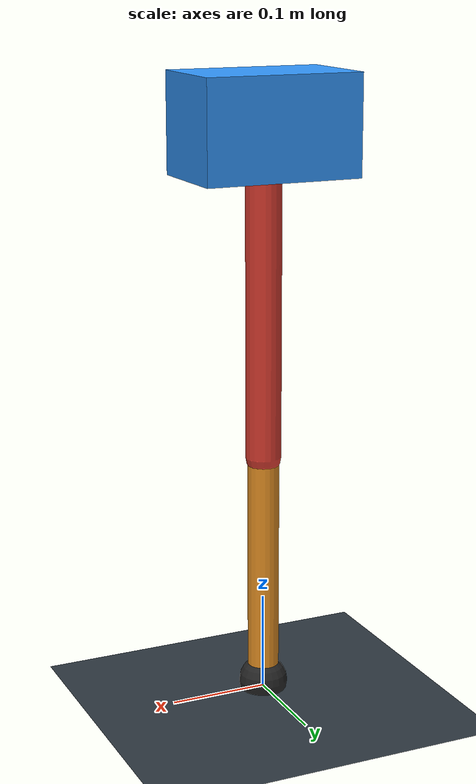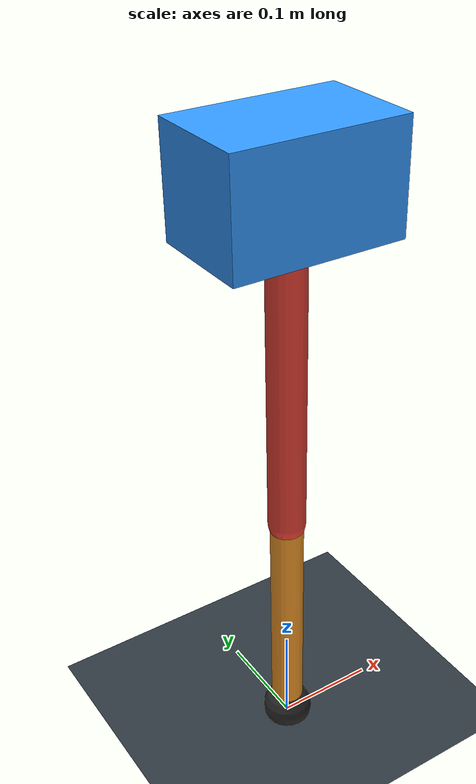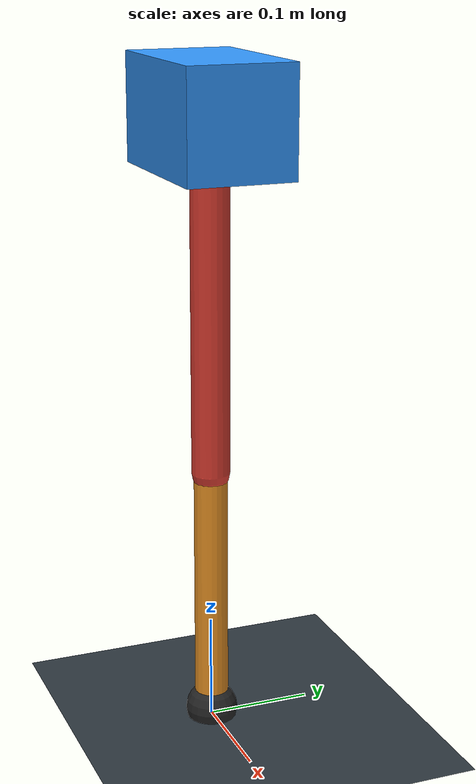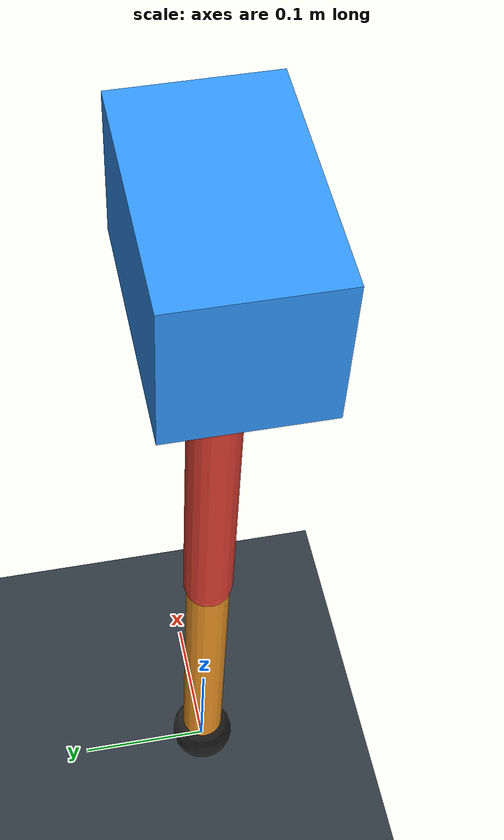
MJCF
<mujoco model="single_axis_two_bar">
  <compiler angle="radian" inertiafromgeom="true"/>
  <option timestep="0.001" integrator="implicitfast" gravity="0 0 -9.81"/>
  <default>
    <joint damping="0.08"/>
    <geom friction="1.2 0.01 0.0001" condim="3"/>
  </default>
  <worldbody>
    <geom name="floor" type="plane" size="5 5 0.1" rgba="0.18 0.22 0.25 1"/>
    <body name="carriage" pos="0 0 0.5833706357936826">
      <joint name="pole_slide" type="slide" axis="0 0 1"/>
      <geom name="payload" type="box" size="0.08 0.05 0.05" mass="2.436011420970515" rgba="0.2 0.6 1 1"/>
      <body name="thigh" pos="0 0 0">
        <joint name="hip" type="hinge" axis="0 1 0"/>
        <geom name="thigh_link" type="capsule" fromto="0 0 0 0 0 -0.3325119689881975" size="0.018" mass="0.23691917166210683" rgba="0.9 0.25 0.2 1"/>
        <body name="shank" pos="0 0 -0.3325119689881975">
          <joint name="knee" type="hinge" axis="0 1 0"/>
          <geom name="shank_link" type="capsule" fromto="0 0 0 0 0 -0.24312786172693923" size="0.016" mass="0.17323181413168998" rgba="0.95 0.6 0.15 1"/>
          <geom name="foot" type="sphere" pos="0 0 -0.24312786172693923" size="0.025" mass="0.03" rgba="0.15 0.15 0.15 1"/>
          <site name="toe" pos="0 0 -0.24312786172693923" size="0.008"/>
        </body>
      </body>
    </body>
  </worldbody>
  <actuator>
    <motor name="hip_motor" joint="hip" ctrlrange="-33.78068592334369 33.78068592334369"/>
    <motor name="knee_motor" joint="knee" ctrlrange="-86.77520332452774 86.77520332452774"/>
  </actuator>
</mujoco>
